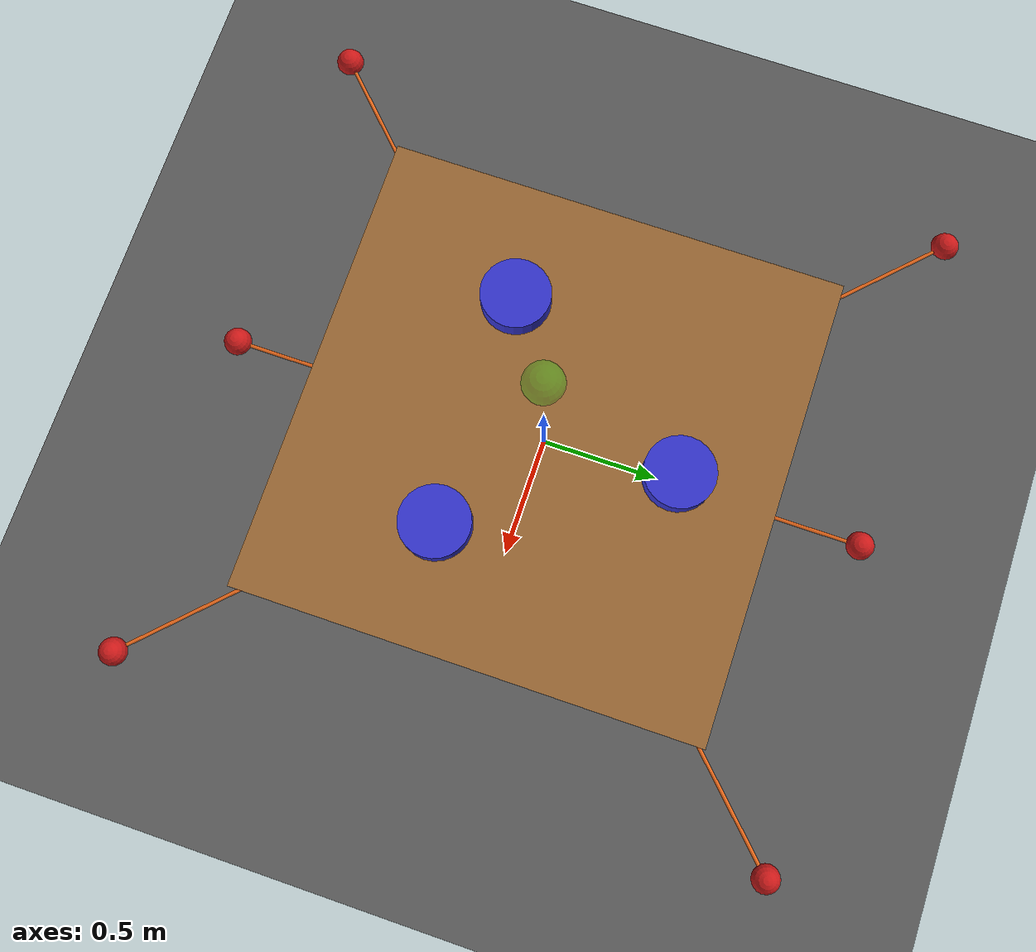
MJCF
<mujoco model="multi_drone_payload">
  <compiler angle="radian" autolimits="true"/>

  <option gravity="0 0 -9.81" timestep="0.002"/>

  <visual>
    <headlight ambient="0.4 0.4 0.4" diffuse="0.8 0.8 0.8"/>
    <rgba haze="0.15 0.25 0.35 1"/>
  </visual>

  <asset>
    <texture type="skybox" builtin="gradient"
             rgb1="0.4 0.6 0.8" rgb2="0.0 0.0 0.0" width="512" height="512"/>
    <texture name="grid" type="2d" builtin="checker"
             rgb1="0.3 0.3 0.3" rgb2="0.4 0.4 0.4" width="512" height="512"/>
    <material name="grid_mat" texture="grid" texrepeat="4 4" reflectance="0.1"/>
    <material name="payload_mat" rgba="0.6 0.4 0.2 1"/>
    <material name="drone_mat"   rgba="0.2 0.2 0.8 1"/>
    <material name="anchor_mat"  rgba="0.8 0.1 0.1 1"/>
    <material name="hook_mat"    rgba="1.0 0.8 0.0 1"/>
    <material name="target_mat"  rgba="0.0 0.9 0.0 0.3"/>
  </asset>

  <worldbody>

    <geom name="ground" type="plane" size="10 10 0.1"
          material="grid_mat" condim="3" friction="1 0.005 0.0001"/>

    <body name="target_marker" mocap="true" pos="0 0 1.0">
      <geom type="sphere" size="0.08" material="target_mat" contype="0" conaffinity="0"/>
    </body>

    <body name="payload" pos="0 0 0.1">
      <freejoint name="payload_joint"/>
      <inertial pos="0 0 0" mass="1.0"
                diaginertia="0.3467 0.3467 0.6667"/>
      <geom name="payload_geom" type="box" size="1.0 1.0 0.1"
            material="payload_mat" condim="3" friction="1 0.005 0.0001"/>

      <!-- UAV hook sites (top face, z=+0.10 from COM) -->
      <site name="hook_1" pos=" 0.0000  0.5774  0.10" size="0.04" rgba="1 0.8 0 1"/>
      <site name="hook_2" pos="-0.5000 -0.2887  0.10" size="0.04" rgba="1 0.8 0 1"/>
      <site name="hook_3" pos=" 0.5000 -0.2887  0.10" size="0.04" rgba="1 0.8 0 1"/>

      <!-- Ground cable hook sites (bottom face, z=-0.10 from COM) -->
      <site name="hook_4" pos="-0.9  0.9 -0.10" size="0.04" rgba="1 0.4 0 1"/>
      <site name="hook_5" pos=" 0.0  0.9 -0.10" size="0.04" rgba="1 0.4 0 1"/>
      <site name="hook_6" pos=" 0.9  0.9 -0.10" size="0.04" rgba="1 0.4 0 1"/>
      <site name="hook_7" pos="-0.9 -0.9 -0.10" size="0.04" rgba="1 0.4 0 1"/>
      <site name="hook_8" pos=" 0.0 -0.9 -0.10" size="0.04" rgba="1 0.4 0 1"/>
      <site name="hook_9" pos=" 0.9 -0.9 -0.10" size="0.04" rgba="1 0.4 0 1"/>
    </body>

    <body name="drone_1" pos="0.0000 0.5774 0.25">
      <freejoint name="drone_1_joint"/>
      <inertial pos="0 0 0" mass="2.0" diaginertia="0.015 0.015 0.0225"/>
      <geom name="drone_1_geom" type="cylinder" size="0.15 0.05"
            material="drone_mat" condim="3" friction="1 0.005 0.0001"/>
      <site name="drone_1_com" pos="0 0 0" size="0.03" rgba="0 1 1 1"/>
    </body>

    <body name="drone_2" pos="-0.5000 -0.2887 0.25">
      <freejoint name="drone_2_joint"/>
      <inertial pos="0 0 0" mass="2.0" diaginertia="0.015 0.015 0.0225"/>
      <geom name="drone_2_geom" type="cylinder" size="0.15 0.05"
            material="drone_mat" condim="3" friction="1 0.005 0.0001"/>
      <site name="drone_2_com" pos="0 0 0" size="0.03" rgba="0 1 1 1"/>
    </body>

    <body name="drone_3" pos="0.5000 -0.2887 0.25">
      <freejoint name="drone_3_joint"/>
      <inertial pos="0 0 0" mass="2.0" diaginertia="0.015 0.015 0.0225"/>
      <geom name="drone_3_geom" type="cylinder" size="0.15 0.05"
            material="drone_mat" condim="3" friction="1 0.005 0.0001"/>
      <site name="drone_3_com" pos="0 0 0" size="0.03" rgba="0 1 1 1"/>
    </body>

    <site name="ground_anchor_4" pos="-1.4  1.4 0" size="0.06" rgba="0.8 0.1 0.1 1"/>
    <site name="ground_anchor_5" pos=" 0.0  1.4 0" size="0.06" rgba="0.8 0.1 0.1 1"/>
    <site name="ground_anchor_6" pos=" 1.4  1.4 0" size="0.06" rgba="0.8 0.1 0.1 1"/>
    <site name="ground_anchor_7" pos="-1.4 -1.4 0" size="0.06" rgba="0.8 0.1 0.1 1"/>
    <site name="ground_anchor_8" pos=" 0.0 -1.4 0" size="0.06" rgba="0.8 0.1 0.1 1"/>
    <site name="ground_anchor_9" pos=" 1.4 -1.4 0" size="0.06" rgba="0.8 0.1 0.1 1"/>

  </worldbody>

  <tendon>

    <!-- Drone cables -->
    <spatial name="cable_1" width="0.008" rgba="0.2 0.8 0.2 1" limited="true" range="0 1.0">
      <site site="drone_1_com"/>
      <site site="hook_1"/>
    </spatial>

    <spatial name="cable_2" width="0.008" rgba="0.2 0.8 0.2 1" limited="true" range="0 1.0">
      <site site="drone_2_com"/>
      <site site="hook_2"/>
    </spatial>

    <spatial name="cable_3" width="0.008" rgba="0.2 0.8 0.2 1" limited="true" range="0 1.0">
      <site site="drone_3_com"/>
      <site site="hook_3"/>
    </spatial>

    <!-- Ground cables -->
    <spatial name="cable_4" width="0.008" rgba="0.9 0.4 0.1 1" limited="true" range="0 1.1446">
      <site site="ground_anchor_4"/>
      <site site="hook_4"/>
    </spatial>

    <spatial name="cable_5" width="0.008" rgba="0.9 0.4 0.1 1" limited="true" range="0 1.0296">
      <site site="ground_anchor_5"/>
      <site site="hook_5"/>
    </spatial>

    <spatial name="cable_6" width="0.008" rgba="0.9 0.4 0.1 1" limited="true" range="0 1.1446">
      <site site="ground_anchor_6"/>
      <site site="hook_6"/>
    </spatial>

    <spatial name="cable_7" width="0.008" rgba="0.9 0.4 0.1 1" limited="true" range="0 1.1446">
      <site site="ground_anchor_7"/>
      <site site="hook_7"/>
    </spatial>

    <spatial name="cable_8" width="0.008" rgba="0.9 0.4 0.1 1" limited="true" range="0 1.0296">
      <site site="ground_anchor_8"/>
      <site site="hook_8"/>
    </spatial>

    <spatial name="cable_9" width="0.008" rgba="0.9 0.4 0.1 1" limited="true" range="0 1.1446">
      <site site="ground_anchor_9"/>
      <site site="hook_9"/>
    </spatial>

  </tendon>

</mujoco>
